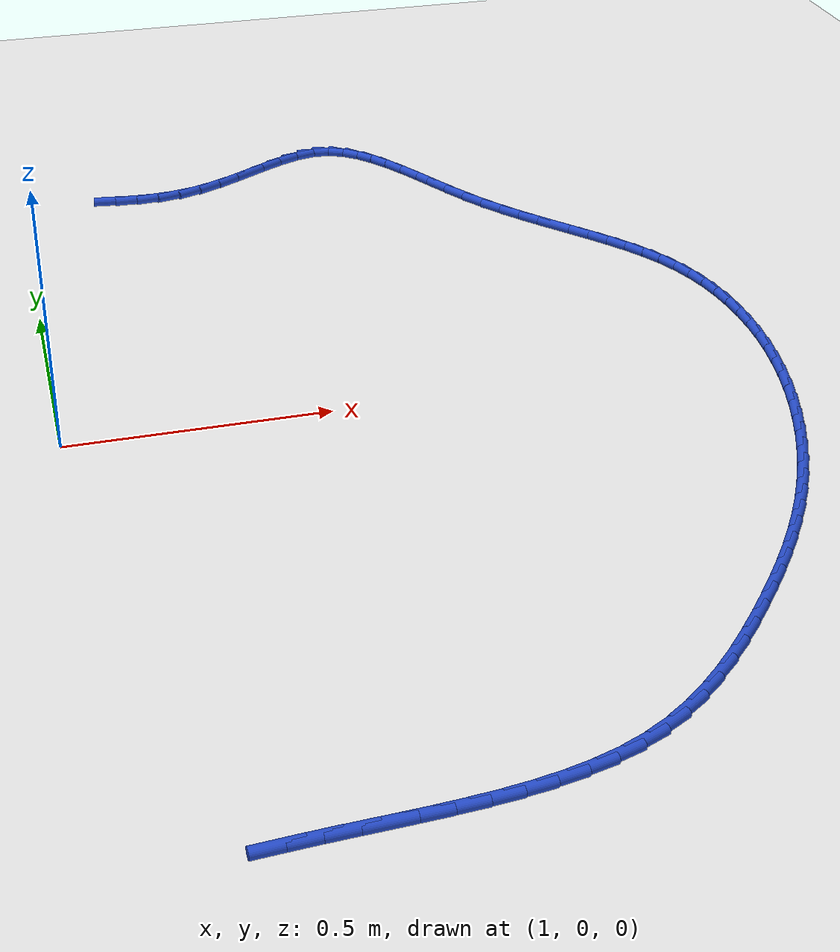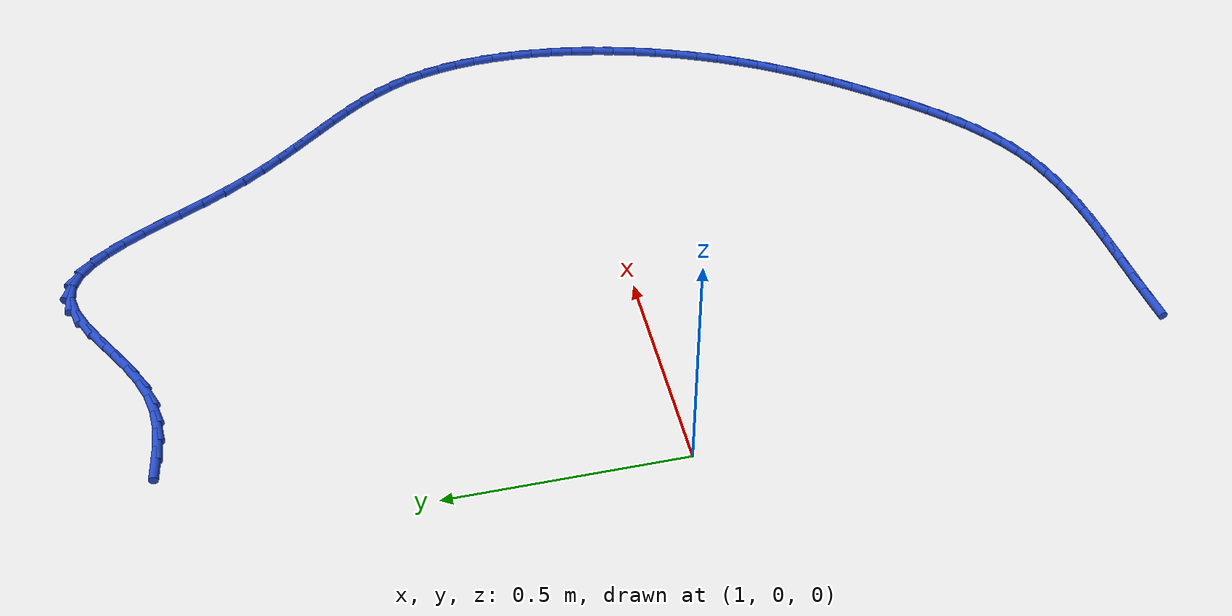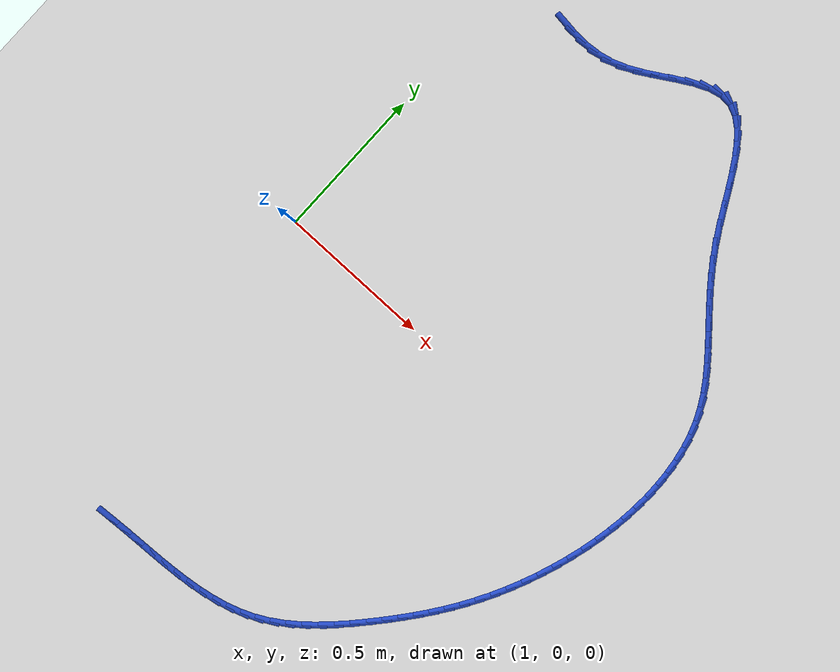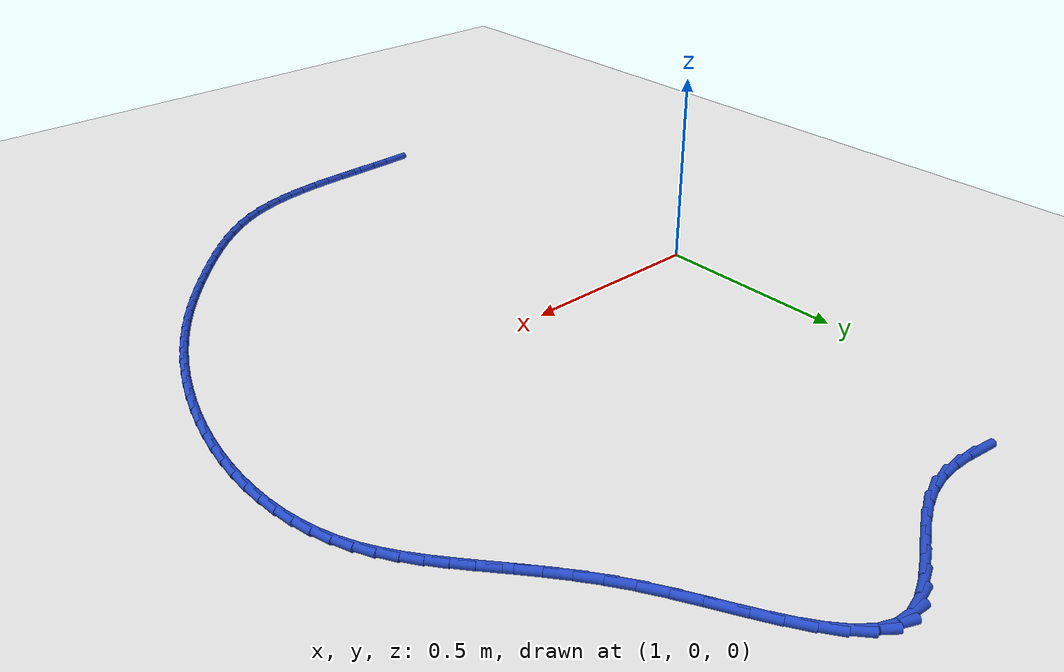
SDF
<sdf version="1.6">
 <world name="default">
  <model name="ground_plane">
   <static>1</static>
   <link name="link">
    <collision name="collision">
     <geometry><plane><normal>0 0 1</normal><size>100 100</size></plane></geometry>
     <surface><friction><ode><mu>100</mu><mu2>50</mu2></ode></friction></surface>
    </collision>
    <visual name="visual">
     <cast_shadows>0</cast_shadows>
     <geometry><plane><normal>0 0 1</normal><size>100 100</size></plane></geometry>
     <material>
      <script><uri>file://media/materials/scripts/gazebo.material</uri><name>Gazebo/WhiteGlow</name></script>
     </material>
    </visual>
   </link>
  </model>
  <model name="line">
   <link name="link_39">
    <pose>1.2042816455728071 1.0242925636586857 0.01 0 1.57 -0.11782451779806392</pose>
    <collision name="collision">
     <geometry><cylinder><radius>0.01</radius><length>0.08</length></cylinder></geometry>
    </collision>
    <visual name="visual">
     <material>
      <script><name>Gazebo/Blue</name><uri>file://media/materials/scripts/gazebo.material</uri></script>
     </material>
     <geometry><cylinder><radius>0.01</radius><length>0.08</length></cylinder></geometry>
    </visual>
   </link>
   <link name="link_40">
    <pose>1.2525978437633607 1.018573239984418 0.01 0 1.57 -0.02336054635019127</pose>
    <collision name="collision">
     <geometry><cylinder><radius>0.01</radius><length>0.08</length></cylinder></geometry>
    </collision>
    <visual name="visual">
     <material>
      <script><name>Gazebo/Blue</name><uri>file://media/materials/scripts/gazebo.material</uri></script>
     </material>
     <geometry><cylinder><radius>0.01</radius><length>0.08</length></cylinder></geometry>
    </visual>
   </link>
   <link name="link_41">
    <pose>1.300659825554377 1.0174502815518742 0.01 0 1.57 0.09508545396640276</pose>
    <collision name="collision">
     <geometry><cylinder><radius>0.01</radius><length>0.08</length></cylinder></geometry>
    </collision>
    <visual name="visual">
     <material>
      <script><name>Gazebo/Blue</name><uri>file://media/materials/scripts/gazebo.material</uri></script>
     </material>
     <geometry><cylinder><radius>0.01</radius><length>0.08</length></cylinder></geometry>
    </visual>
   </link>
   <link name="link_42">
    <pose>1.3486059507132602 1.0220230501137217 0.01 0 1.57 0.2326924779171556</pose>
    <collision name="collision">
     <geometry><cylinder><radius>0.01</radius><length>0.08</length></cylinder></geometry>
    </collision>
    <visual name="visual">
     <material>
      <script><name>Gazebo/Blue</name><uri>file://media/materials/scripts/gazebo.material</uri></script>
     </material>
     <geometry><cylinder><radius>0.01</radius><length>0.08</length></cylinder></geometry>
    </visual>
   </link>
   <link name="link_43">
    <pose>1.3965745790074164 1.033390907422628 0.01 0 1.57 0.3765830726978775</pose>
    <collision name="collision">
     <geometry><cylinder><radius>0.01</radius><length>0.08</length></cylinder></geometry>
    </collision>
    <visual name="visual">
     <material>
      <script><name>Gazebo/Blue</name><uri>file://media/materials/scripts/gazebo.material</uri></script>
     </material>
     <geometry><cylinder><radius>0.01</radius><length>0.08</length></cylinder></geometry>
    </visual>
   </link>
   <link name="link_44">
    <pose>1.4446691625939485 1.0524102026499016 0.01 0 1.57 0.4815172181390112</pose>
    <collision name="collision">
     <geometry><cylinder><radius>0.01</radius><length>0.08</length></cylinder></geometry>
    </collision>
    <visual name="visual">
     <material>
      <script><name>Gazebo/Blue</name><uri>file://media/materials/scripts/gazebo.material</uri></script>
     </material>
     <geometry><cylinder><radius>0.01</radius><length>0.08</length></cylinder></geometry>
    </visual>
   </link>
   <link name="link_45">
    <pose>1.4926397126503907 1.0774767726585655 0.01 0 1.57 0.534894861974571</pose>
    <collision name="collision">
     <geometry><cylinder><radius>0.01</radius><length>0.08</length></cylinder></geometry>
    </collision>
    <visual name="visual">
     <material>
      <script><name>Gazebo/Blue</name><uri>file://media/materials/scripts/gazebo.material</uri></script>
     </material>
     <geometry><cylinder><radius>0.01</radius><length>0.08</length></cylinder></geometry>
    </visual>
   </link>
   <link name="link_46">
    <pose>1.5400308412010468 1.1055565489700203 0.01 0 1.57 0.5440439084154823</pose>
    <collision name="collision">
     <geometry><cylinder><radius>0.01</radius><length>0.08</length></cylinder></geometry>
    </collision>
    <visual name="visual">
     <material>
      <script><name>Gazebo/Blue</name><uri>file://media/materials/scripts/gazebo.material</uri></script>
     </material>
     <geometry><cylinder><radius>0.01</radius><length>0.08</length></cylinder></geometry>
    </visual>
   </link>
   <link name="link_47">
    <pose>1.586384623658411 1.1335978042462127 0.01 0 1.57 0.5076027853361925</pose>
    <collision name="collision">
     <geometry><cylinder><radius>0.01</radius><length>0.08</length></cylinder></geometry>
    </collision>
    <visual name="visual">
     <material>
      <script><name>Gazebo/Blue</name><uri>file://media/materials/scripts/gazebo.material</uri></script>
     </material>
     <geometry><cylinder><radius>0.01</radius><length>0.08</length></cylinder></geometry>
    </visual>
   </link>
   <link name="link_48">
    <pose>1.6312431354349761 1.1585488111490905 0.01 0 1.57 0.41315270728176634</pose>
    <collision name="collision">
     <geometry><cylinder><radius>0.01</radius><length>0.08</length></cylinder></geometry>
    </collision>
    <visual name="visual">
     <material>
      <script><name>Gazebo/Blue</name><uri>file://media/materials/scripts/gazebo.material</uri></script>
     </material>
     <geometry><cylinder><radius>0.01</radius><length>0.08</length></cylinder></geometry>
    </visual>
   </link>
   <link name="link_49">
    <pose>1.674148451943235 1.1773578423406001 0.01 0 1.57 0.23313202911358047</pose>
    <collision name="collision">
     <geometry><cylinder><radius>0.01</radius><length>0.08</length></cylinder></geometry>
    </collision>
    <visual name="visual">
     <material>
      <script><name>Gazebo/Blue</name><uri>file://media/materials/scripts/gazebo.material</uri></script>
     </material>
     <geometry><cylinder><radius>0.01</radius><length>0.08</length></cylinder></geometry>
    </visual>
   </link>
   <link name="link_50">
    <pose>1.7146426485956823 1.1869731704826887 0.01 0 1.57 -0.06676547502860465</pose>
    <collision name="collision">
     <geometry><cylinder><radius>0.01</radius><length>0.08</length></cylinder></geometry>
    </collision>
    <visual name="visual">
     <material>
      <script><name>Gazebo/Blue</name><uri>file://media/materials/scripts/gazebo.material</uri></script>
     </material>
     <geometry><cylinder><radius>0.01</radius><length>0.08</length></cylinder></geometry>
    </visual>
   </link>
   <link name="link_51">
    <pose>1.7522897452074089 1.1844559027336639 0.01 0 1.57 -0.41085451281752644</pose>
    <collision name="collision">
     <geometry><cylinder><radius>0.01</radius><length>0.08</length></cylinder></geometry>
    </collision>
    <visual name="visual">
     <material>
      <script><name>Gazebo/Blue</name><uri>file://media/materials/scripts/gazebo.material</uri></script>
     </material>
     <geometry><cylinder><radius>0.01</radius><length>0.08</length></cylinder></geometry>
    </visual>
   </link>
   <link name="link_52">
    <pose>1.7871231773394185 1.1692808045427932 0.01 0 1.57 -0.6754572141994422</pose>
    <collision name="collision">
     <geometry><cylinder><radius>0.01</radius><length>0.08</length></cylinder></geometry>
    </collision>
    <visual name="visual">
     <material>
      <script><name>Gazebo/Blue</name><uri>file://media/materials/scripts/gazebo.material</uri></script>
     </material>
     <geometry><cylinder><radius>0.01</radius><length>0.08</length></cylinder></geometry>
    </visual>
   </link>
   <link name="link_53">
    <pose>1.8196269815825128 1.1432395574853076 0.01 0 1.57 -0.8514501343276414</pose>
    <collision name="collision">
     <geometry><cylinder><radius>0.01</radius><length>0.08</length></cylinder></geometry>
    </collision>
    <visual name="visual">
     <material>
      <script><name>Gazebo/Blue</name><uri>file://media/materials/scripts/gazebo.material</uri></script>
     </material>
     <geometry><cylinder><radius>0.01</radius><length>0.08</length></cylinder></geometry>
    </visual>
   </link>
   <link name="link_54">
    <pose>1.850303374012861 1.1082173190497888 0.01 0 1.57 -0.9621681207622425</pose>
    <collision name="collision">
     <geometry><cylinder><radius>0.01</radius><length>0.08</length></cylinder></geometry>
    </collision>
    <visual name="visual">
     <material>
      <script><name>Gazebo/Blue</name><uri>file://media/materials/scripts/gazebo.material</uri></script>
     </material>
     <geometry><cylinder><radius>0.01</radius><length>0.08</length></cylinder></geometry>
    </visual>
   </link>
   <link name="link_55">
    <pose>1.8796545707066348 1.0660992467248203 0.01 0 1.57 -1.0283446093188084</pose>
    <collision name="collision">
     <geometry><cylinder><radius>0.01</radius><length>0.08</length></cylinder></geometry>
    </collision>
    <visual name="visual">
     <material>
      <script><name>Gazebo/Blue</name><uri>file://media/materials/scripts/gazebo.material</uri></script>
     </material>
     <geometry><cylinder><radius>0.01</radius><length>0.08</length></cylinder></geometry>
    </visual>
   </link>
   <link name="link_56">
    <pose>1.9081827877400053 1.0187704979989847 0.01 0 1.57 -1.0626998042609304</pose>
    <collision name="collision">
     <geometry><cylinder><radius>0.01</radius><length>0.08</length></cylinder></geometry>
    </collision>
    <visual name="visual">
     <material>
      <script><name>Gazebo/Blue</name><uri>file://media/materials/scripts/gazebo.material</uri></script>
     </material>
     <geometry><cylinder><radius>0.01</radius><length>0.08</length></cylinder></geometry>
    </visual>
   </link>
   <link name="link_57">
    <pose>1.936390241189143 0.968116230360864 0.01 0 1.57 -1.0718394611843682</pose>
    <collision name="collision">
     <geometry><cylinder><radius>0.01</radius><length>0.08</length></cylinder></geometry>
    </collision>
    <visual name="visual">
     <material>
      <script><name>Gazebo/Blue</name><uri>file://media/materials/scripts/gazebo.material</uri></script>
     </material>
     <geometry><cylinder><radius>0.01</radius><length>0.08</length></cylinder></geometry>
    </visual>
   </link>
   <link name="link_58">
    <pose>1.9647791471302196 0.9160216012990413 0.01 0 1.57 -1.058119476177989</pose>
    <collision name="collision">
     <geometry><cylinder><radius>0.01</radius><length>0.08</length></cylinder></geometry>
    </collision>
    <visual name="visual">
     <material>
      <script><name>Gazebo/Blue</name><uri>file://media/materials/scripts/gazebo.material</uri></script>
     </material>
     <geometry><cylinder><radius>0.01</radius><length>0.08</length></cylinder></geometry>
    </visual>
   </link>
   <link name="link_59">
    <pose>1.993851721639406 0.8643717683020999 0.01 0 1.57 -1.0206494215341262</pose>
    <collision name="collision">
     <geometry><cylinder><radius>0.01</radius><length>0.08</length></cylinder></geometry>
    </collision>
    <visual name="visual">
     <material>
      <script><name>Gazebo/Blue</name><uri>file://media/materials/scripts/gazebo.material</uri></script>
     </material>
     <geometry><cylinder><radius>0.01</radius><length>0.08</length></cylinder></geometry>
    </visual>
   </link>
   <link name="link_60">
    <pose>2.0241061232113076 0.8150418504887914 0.01 0 1.57 -0.9686179806672512</pose>
    <collision name="collision">
     <geometry><cylinder><radius>0.01</radius><length>0.08</length></cylinder></geometry>
    </collision>
    <visual name="visual">
     <material>
      <script><name>Gazebo/Blue</name><uri>file://media/materials/scripts/gazebo.material</uri></script>
     </material>
     <geometry><cylinder><radius>0.01</radius><length>0.08</length></cylinder></geometry>
    </visual>
   </link>
   <link name="link_61">
    <pose>2.0557030129762452 0.7690720057317476 0.01 0 1.57 -0.9235868822994103</pose>
    <collision name="collision">
     <geometry><cylinder><radius>0.01</radius><length>0.08</length></cylinder></geometry>
    </collision>
    <visual name="visual">
     <material>
      <script><name>Gazebo/Blue</name><uri>file://media/materials/scripts/gazebo.material</uri></script>
     </material>
     <geometry><cylinder><radius>0.01</radius><length>0.08</length></cylinder></geometry>
    </visual>
   </link>
   <link name="link_62">
    <pose>2.0882172079015975 0.7260530260000932 0.01 0 1.57 -0.8893350564374755</pose>
    <collision name="collision">
     <geometry><cylinder><radius>0.01</radius><length>0.08</length></cylinder></geometry>
    </collision>
    <visual name="visual">
     <material>
      <script><name>Gazebo/Blue</name><uri>file://media/materials/scripts/gazebo.material</uri></script>
     </material>
     <geometry><cylinder><radius>0.01</radius><length>0.08</length></cylinder></geometry>
    </visual>
   </link>
   <link name="link_63">
    <pose>2.121165011489231 0.6854309422033175 0.01 0 1.57 -0.8672696808095234</pose>
    <collision name="collision">
     <geometry><cylinder><radius>0.01</radius><length>0.08</length></cylinder></geometry>
    </collision>
    <visual name="visual">
     <material>
      <script><name>Gazebo/Blue</name><uri>file://media/materials/scripts/gazebo.material</uri></script>
     </material>
     <geometry><cylinder><radius>0.01</radius><length>0.08</length></cylinder></geometry>
    </visual>
   </link>
   <link name="link_64">
    <pose>2.154062727241013 0.6466517852509075 0.01 0 1.57 -0.8586521716212228</pose>
    <collision name="collision">
     <geometry><cylinder><radius>0.01</radius><length>0.08</length></cylinder></geometry>
    </collision>
    <visual name="visual">
     <material>
      <script><name>Gazebo/Blue</name><uri>file://media/materials/scripts/gazebo.material</uri></script>
     </material>
     <geometry><cylinder><radius>0.01</radius><length>0.08</length></cylinder></geometry>
    </visual>
   </link>
   <link name="link_65">
    <pose>2.18642665865881 0.6091615860523518 0.01 0 1.57 -0.8646536499138596</pose>
    <collision name="collision">
     <geometry><cylinder><radius>0.01</radius><length>0.08</length></cylinder></geometry>
    </collision>
    <visual name="visual">
     <material>
      <script><name>Gazebo/Blue</name><uri>file://media/materials/scripts/gazebo.material</uri></script>
     </material>
     <geometry><cylinder><radius>0.01</radius><length>0.08</length></cylinder></geometry>
    </visual>
   </link>
   <link name="link_66">
    <pose>2.217773109244491 0.5724063755171388 0.01 0 1.57 -0.8863631071750743</pose>
    <collision name="collision">
     <geometry><cylinder><radius>0.01</radius><length>0.08</length></cylinder></geometry>
    </collision>
    <visual name="visual">
     <material>
      <script><name>Gazebo/Blue</name><uri>file://media/materials/scripts/gazebo.material</uri></script>
     </material>
     <geometry><cylinder><radius>0.01</radius><length>0.08</length></cylinder></geometry>
    </visual>
   </link>
   <link name="link_67">
    <pose>2.2476183824999216 0.5358321845547559 0.01 0 1.57 -0.9247012103780249</pose>
    <collision name="collision">
     <geometry><cylinder><radius>0.01</radius><length>0.08</length></cylinder></geometry>
    </collision>
    <visual name="visual">
     <material>
      <script><name>Gazebo/Blue</name><uri>file://media/materials/scripts/gazebo.material</uri></script>
     </material>
     <geometry><cylinder><radius>0.01</radius><length>0.08</length></cylinder></geometry>
    </visual>
   </link>
   <link name="link_68">
    <pose>2.2754787819269695 0.4988850440746924 0.01 0 1.57 -0.9801942524848771</pose>
    <collision name="collision">
     <geometry><cylinder><radius>0.01</radius><length>0.08</length></cylinder></geometry>
    </collision>
    <visual name="visual">
     <material>
      <script><name>Gazebo/Blue</name><uri>file://media/materials/scripts/gazebo.material</uri></script>
     </material>
     <geometry><cylinder><radius>0.01</radius><length>0.08</length></cylinder></geometry>
    </visual>
   </link>
   <link name="link_69">
    <pose>2.3008706110275017 0.4610109849864359 0.01 0 1.57 -1.0525889060531999</pose>
    <collision name="collision">
     <geometry><cylinder><radius>0.01</radius><length>0.08</length></cylinder></geometry>
    </collision>
    <visual name="visual">
     <material>
      <script><name>Gazebo/Blue</name><uri>file://media/materials/scripts/gazebo.material</uri></script>
     </material>
     <geometry><cylinder><radius>0.01</radius><length>0.08</length></cylinder></geometry>
    </visual>
   </link>
   <link name="link_70">
    <pose>2.323310173303385 0.4216560381994746 0.01 0 1.57 -1.13982109331925</pose>
    <collision name="collision">
     <geometry><cylinder><radius>0.01</radius><length>0.08</length></cylinder></geometry>
    </collision>
    <visual name="visual">
     <material>
      <script><name>Gazebo/Blue</name><uri>file://media/materials/scripts/gazebo.material</uri></script>
     </material>
     <geometry><cylinder><radius>0.01</radius><length>0.08</length></cylinder></geometry>
    </visual>
   </link>
   <link name="link_71">
    <pose>2.3423310894931917 0.3802884061911581 0.01 0 1.57 -1.2295295904677952</pose>
    <collision name="collision">
     <geometry><cylinder><radius>0.01</radius><length>0.08</length></cylinder></geometry>
    </collision>
    <visual name="visual">
     <material>
      <script><name>Gazebo/Blue</name><uri>file://media/materials/scripts/gazebo.material</uri></script>
     </material>
     <geometry><cylinder><radius>0.01</radius><length>0.08</length></cylinder></geometry>
    </visual>
   </link>
   <link name="link_72">
    <pose>2.3577832313403824 0.3367811932563661 0.01 0 1.57 -1.3122969676908305</pose>
    <collision name="collision">
     <geometry><cylinder><radius>0.01</radius><length>0.08</length></cylinder></geometry>
    </collision>
    <visual name="visual">
     <material>
      <script><name>Gazebo/Blue</name><uri>file://media/materials/scripts/gazebo.material</uri></script>
     </material>
     <geometry><cylinder><radius>0.01</radius><length>0.08</length></cylinder></geometry>
    </visual>
   </link>
   <link name="link_73">
    <pose>2.3697929119557437 0.29136143651655894 0.01 0 1.57 -1.3880580985653634</pose>
    <collision name="collision">
     <geometry><cylinder><radius>0.01</radius><length>0.08</length></cylinder></geometry>
    </collision>
    <visual name="visual">
     <material>
      <script><name>Gazebo/Blue</name><uri>file://media/materials/scripts/gazebo.material</uri></script>
     </material>
     <geometry><cylinder><radius>0.01</radius><length>0.08</length></cylinder></geometry>
    </visual>
   </link>
   <link name="link_74">
    <pose>2.378495754555498 0.24426809298769364 0.01 0 1.57 -1.4572977745761642</pose>
    <collision name="collision">
     <geometry><cylinder><radius>0.01</radius><length>0.08</length></cylinder></geometry>
    </collision>
    <visual name="visual">
     <material>
      <script><name>Gazebo/Blue</name><uri>file://media/materials/scripts/gazebo.material</uri></script>
     </material>
     <geometry><cylinder><radius>0.01</radius><length>0.08</length></cylinder></geometry>
    </visual>
   </link>
   <link name="link_75">
    <pose>2.3840273823558675 0.1957401196857268 0.01 0 1.57 -1.52064025362172</pose>
    <collision name="collision">
     <geometry><cylinder><radius>0.01</radius><length>0.08</length></cylinder></geometry>
    </collision>
    <visual name="visual">
     <material>
      <script><name>Gazebo/Blue</name><uri>file://media/materials/scripts/gazebo.material</uri></script>
     </material>
     <geometry><cylinder><radius>0.01</radius><length>0.08</length></cylinder></geometry>
    </visual>
   </link>
   <link name="link_76">
    <pose>2.3865234185730744 0.1460164736266149 0.01 0 1.57 1.5628263048260254</pose>
    <collision name="collision">
     <geometry><cylinder><radius>0.01</radius><length>0.08</length></cylinder></geometry>
    </collision>
    <visual name="visual">
     <material>
      <script><name>Gazebo/Blue</name><uri>file://media/materials/scripts/gazebo.material</uri></script>
     </material>
     <geometry><cylinder><radius>0.01</radius><length>0.08</length></cylinder></geometry>
    </visual>
   </link>
   <link name="link_77">
    <pose>2.386119486423341 0.09533611182631498 0.01 0 1.57 1.5092323331376005</pose>
    <collision name="collision">
     <geometry><cylinder><radius>0.01</radius><length>0.08</length></cylinder></geometry>
    </collision>
    <visual name="visual">
     <material>
      <script><name>Gazebo/Blue</name><uri>file://media/materials/scripts/gazebo.material</uri></script>
     </material>
     <geometry><cylinder><radius>0.01</radius><length>0.08</length></cylinder></geometry>
    </visual>
   </link>
   <link name="link_78">
    <pose>2.38295120912289 0.04393799130078455 0.01 0 1.57 1.4595127516049173</pose>
    <collision name="collision">
     <geometry><cylinder><radius>0.01</radius><length>0.08</length></cylinder></geometry>
    </collision>
    <visual name="visual">
     <material>
      <script><name>Gazebo/Blue</name><uri>file://media/materials/scripts/gazebo.material</uri></script>
     </material>
     <geometry><cylinder><radius>0.01</radius><length>0.08</length></cylinder></geometry>
    </visual>
   </link>
   <link name="link_79">
    <pose>2.377154209887942 -0.007938930934021149 0.01 0 1.57 1.4130501560871613</pose>
    <collision name="collision">
     <geometry><cylinder><radius>0.01</radius><length>0.08</length></cylinder></geometry>
    </collision>
    <visual name="visual">
     <material>
      <script><name>Gazebo/Blue</name><uri>file://media/materials/scripts/gazebo.material</uri></script>
     </material>
     <geometry><cylinder><radius>0.01</radius><length>0.08</length></cylinder></geometry>
    </visual>
   </link>
   <link name="link_80">
    <pose>2.368864111934722 -0.060055697862143785 0.01 0 1.57 1.369270758628455</pose>
    <collision name="collision">
     <geometry><cylinder><radius>0.01</radius><length>0.08</length></cylinder></geometry>
    </collision>
    <visual name="visual">
     <material>
      <script><name>Gazebo/Blue</name><uri>file://media/materials/scripts/gazebo.material</uri></script>
     </material>
     <geometry><cylinder><radius>0.01</radius><length>0.08</length></cylinder></geometry>
    </visual>
   </link>
   <link name="link_81">
    <pose>2.35821653847945 -0.11217335246762836 0.01 0 1.57 1.3276411852856618</pose>
    <collision name="collision">
     <geometry><cylinder><radius>0.01</radius><length>0.08</length></cylinder></geometry>
    </collision>
    <visual name="visual">
     <material>
      <script><name>Gazebo/Blue</name><uri>file://media/materials/scripts/gazebo.material</uri></script>
     </material>
     <geometry><cylinder><radius>0.01</radius><length>0.08</length></cylinder></geometry>
    </visual>
   </link>
   <link name="link_82">
    <pose>2.3453471127383496 -0.16405293773451715 0.01 0 1.57 1.2876613845788</pose>
    <collision name="collision">
     <geometry><cylinder><radius>0.01</radius><length>0.08</length></cylinder></geometry>
    </collision>
    <visual name="visual">
     <material>
      <script><name>Gazebo/Blue</name><uri>file://media/materials/scripts/gazebo.material</uri></script>
     </material>
     <geometry><cylinder><radius>0.01</radius><length>0.08</length></cylinder></geometry>
    </visual>
   </link>
   <link name="link_83">
    <pose>2.330391457927643 -0.2154554966468527 0.01 0 1.57 1.2488551633261287</pose>
    <collision name="collision">
     <geometry><cylinder><radius>0.01</radius><length>0.08</length></cylinder></geometry>
    </collision>
    <visual name="visual">
     <material>
      <script><name>Gazebo/Blue</name><uri>file://media/materials/scripts/gazebo.material</uri></script>
     </material>
     <geometry><cylinder><radius>0.01</radius><length>0.08</length></cylinder></geometry>
    </visual>
   </link>
   <link name="link_84">
    <pose>2.3134851972635513 -0.2661420721886798 0.01 0 1.57 1.2107590940924304</pose>
    <collision name="collision">
     <geometry><cylinder><radius>0.01</radius><length>0.08</length></cylinder></geometry>
    </collision>
    <visual name="visual">
     <material>
      <script><name>Gazebo/Blue</name><uri>file://media/materials/scripts/gazebo.material</uri></script>
     </material>
     <geometry><cylinder><radius>0.01</radius><length>0.08</length></cylinder></geometry>
    </visual>
   </link>
   <link name="link_85">
    <pose>2.294763953962299 -0.3158737073440403 0.01 0 1.57 1.1729099934525988</pose>
    <collision name="collision">
     <geometry><cylinder><radius>0.01</radius><length>0.08</length></cylinder></geometry>
    </collision>
    <visual name="visual">
     <material>
      <script><name>Gazebo/Blue</name><uri>file://media/materials/scripts/gazebo.material</uri></script>
     </material>
     <geometry><cylinder><radius>0.01</radius><length>0.08</length></cylinder></geometry>
    </visual>
   </link>
   <link name="link_86">
    <pose>2.274363351240106 -0.36441144509697876 0.01 0 1.57 1.1348307691559723</pose>
    <collision name="collision">
     <geometry><cylinder><radius>0.01</radius><length>0.08</length></cylinder></geometry>
    </collision>
    <visual name="visual">
     <material>
      <script><name>Gazebo/Blue</name><uri>file://media/materials/scripts/gazebo.material</uri></script>
     </material>
     <geometry><cylinder><radius>0.01</radius><length>0.08</length></cylinder></geometry>
    </visual>
   </link>
   <link name="link_87">
    <pose>2.2524190123131955 -0.41151632843153774 0.01 0 1.57 1.096062313885386</pose>
    <collision name="collision">
     <geometry><cylinder><radius>0.01</radius><length>0.08</length></cylinder></geometry>
    </collision>
    <visual name="visual">
     <material>
      <script><name>Gazebo/Blue</name><uri>file://media/materials/scripts/gazebo.material</uri></script>
     </material>
     <geometry><cylinder><radius>0.01</radius><length>0.08</length></cylinder></geometry>
    </visual>
   </link>
   <link name="link_88">
    <pose>2.229064409681126 -0.45695897223915677 0.01 0 1.57 1.0573435636895376</pose>
    <collision name="collision">
     <geometry><cylinder><radius>0.01</radius><length>0.08</length></cylinder></geometry>
    </collision>
    <visual name="visual">
     <material>
      <script><name>Gazebo/Blue</name><uri>file://media/materials/scripts/gazebo.material</uri></script>
     </material>
     <geometry><cylinder><radius>0.01</radius><length>0.08</length></cylinder></geometry>
    </visual>
   </link>
   <link name="link_89">
    <pose>2.2043846949025516 -0.5007250469688461 0.01 0 1.57 1.0200967625125452</pose>
    <collision name="collision">
     <geometry><cylinder><radius>0.01</radius><length>0.08</length></cylinder></geometry>
    </collision>
    <visual name="visual">
     <material>
      <script><name>Gazebo/Blue</name><uri>file://media/materials/scripts/gazebo.material</uri></script>
     </material>
     <geometry><cylinder><radius>0.01</radius><length>0.08</length></cylinder></geometry>
    </visual>
   </link>
   <link name="link_90">
    <pose>2.1784173265674456 -0.5430124837951162 0.01 0 1.57 0.9848937162894433</pose>
    <collision name="collision">
     <geometry><cylinder><radius>0.01</radius><length>0.08</length></cylinder></geometry>
    </collision>
    <visual name="visual">
     <material>
      <script><name>Gazebo/Blue</name><uri>file://media/materials/scripts/gazebo.material</uri></script>
     </material>
     <geometry><cylinder><radius>0.01</radius><length>0.08</length></cylinder></geometry>
    </visual>
   </link>
   <link name="link_91">
    <pose>2.1511977381502954 -0.5840282268034769 0.01 0 1.57 0.9522070496805922</pose>
    <collision name="collision">
     <geometry><cylinder><radius>0.01</radius><length>0.08</length></cylinder></geometry>
    </collision>
    <visual name="visual">
     <material>
      <script><name>Gazebo/Blue</name><uri>file://media/materials/scripts/gazebo.material</uri></script>
     </material>
     <geometry><cylinder><radius>0.01</radius><length>0.08</length></cylinder></geometry>
    </visual>
   </link>
   <link name="link_92">
    <pose>2.1227613631255884 -0.6239792200794408 0.01 0 1.57 0.9224370843324163</pose>
    <collision name="collision">
     <geometry><cylinder><radius>0.01</radius><length>0.08</length></cylinder></geometry>
    </collision>
    <visual name="visual">
     <material>
      <script><name>Gazebo/Blue</name><uri>file://media/materials/scripts/gazebo.material</uri></script>
     </material>
     <geometry><cylinder><radius>0.01</radius><length>0.08</length></cylinder></geometry>
    </visual>
   </link>
   <link name="link_93">
    <pose>2.093143634967811 -0.663072407708517 0.01 0 1.57 0.8959001671479456</pose>
    <collision name="collision">
     <geometry><cylinder><radius>0.01</radius><length>0.08</length></cylinder></geometry>
    </collision>
    <visual name="visual">
     <material>
      <script><name>Gazebo/Blue</name><uri>file://media/materials/scripts/gazebo.material</uri></script>
     </material>
     <geometry><cylinder><radius>0.01</radius><length>0.08</length></cylinder></geometry>
    </visual>
   </link>
   <link name="link_94">
    <pose>2.0623799871514517 -0.7015147337762178 0.01 0 1.57 0.8728239710631356</pose>
    <collision name="collision">
     <geometry><cylinder><radius>0.01</radius><length>0.08</length></cylinder></geometry>
    </collision>
    <visual name="visual">
     <material>
      <script><name>Gazebo/Blue</name><uri>file://media/materials/scripts/gazebo.material</uri></script>
     </material>
     <geometry><cylinder><radius>0.01</radius><length>0.08</length></cylinder></geometry>
    </visual>
   </link>
   <link name="link_95">
    <pose>2.0305058531509967 -0.7395131423680534 0.01 0 1.57 0.8530415798553839</pose>
    <collision name="collision">
     <geometry><cylinder><radius>0.01</radius><length>0.08</length></cylinder></geometry>
    </collision>
    <visual name="visual">
     <material>
      <script><name>Gazebo/Blue</name><uri>file://media/materials/scripts/gazebo.material</uri></script>
     </material>
     <geometry><cylinder><radius>0.01</radius><length>0.08</length></cylinder></geometry>
    </visual>
   </link>
   <link name="link_96">
    <pose>1.9975533420515486 -0.7772549667868188 0.01 0 1.57 0.83038110487879</pose>
    <collision name="collision">
     <geometry><cylinder><radius>0.01</radius><length>0.08</length></cylinder></geometry>
    </collision>
    <visual name="visual">
     <material>
      <script><name>Gazebo/Blue</name><uri>file://media/materials/scripts/gazebo.material</uri></script>
     </material>
     <geometry><cylinder><radius>0.01</radius><length>0.08</length></cylinder></geometry>
    </visual>
   </link>
   <link name="link_97">
    <pose>1.963487537830247 -0.8145321549949883 0.01 0 1.57 0.7988435093050638</pose>
    <collision name="collision">
     <geometry><cylinder><radius>0.01</radius><length>0.08</length></cylinder></geometry>
    </collision>
    <visual name="visual">
     <material>
      <script><name>Gazebo/Blue</name><uri>file://media/materials/scripts/gazebo.material</uri></script>
     </material>
     <geometry><cylinder><radius>0.01</radius><length>0.08</length></cylinder></geometry>
    </visual>
   </link>
   <link name="link_98">
    <pose>1.928211356768369 -0.8507699237950992 0.01 0 1.57 0.757646637489345</pose>
    <collision name="collision">
     <geometry><cylinder><radius>0.01</radius><length>0.08</length></cylinder></geometry>
    </collision>
    <visual name="visual">
     <material>
      <script><name>Gazebo/Blue</name><uri>file://media/materials/scripts/gazebo.material</uri></script>
     </material>
     <geometry><cylinder><radius>0.01</radius><length>0.08</length></cylinder></geometry>
    </visual>
   </link>
   <link name="link_99">
    <pose>1.891625363964191 -0.8853796202128688 0.01 0 1.57 0.7059745853424321</pose>
    <collision name="collision">
     <geometry><cylinder><radius>0.01</radius><length>0.08</length></cylinder></geometry>
    </collision>
    <visual name="visual">
     <material>
      <script><name>Gazebo/Blue</name><uri>file://media/materials/scripts/gazebo.material</uri></script>
     </material>
     <geometry><cylinder><radius>0.01</radius><length>0.08</length></cylinder></geometry>
    </visual>
   </link>
   <link name="link_100">
    <pose>1.8536301245159947 -0.9177725912740133 0.01 0 1.57 0.6428471131550851</pose>
    <collision name="collision">
     <geometry><cylinder><radius>0.01</radius><length>0.08</length></cylinder></geometry>
    </collision>
    <visual name="visual">
     <material>
      <script><name>Gazebo/Blue</name><uri>file://media/materials/scripts/gazebo.material</uri></script>
     </material>
     <geometry><cylinder><radius>0.01</radius><length>0.08</length></cylinder></geometry>
    </visual>
   </link>
   <link name="link_101">
    <pose>1.8141262035220587 -0.9473601840042484 0.01 0 1.57 0.5672718865307994</pose>
    <collision name="collision">
     <geometry><cylinder><radius>0.01</radius><length>0.08</length></cylinder></geometry>
    </collision>
    <visual name="visual">
     <material>
      <script><name>Gazebo/Blue</name><uri>file://media/materials/scripts/gazebo.material</uri></script>
     </material>
     <geometry><cylinder><radius>0.01</radius><length>0.08</length></cylinder></geometry>
    </visual>
   </link>
   <link name="link_102">
    <pose>1.7730141660806615 -0.9735537454292917 0.01 0 1.57 0.478535032240379</pose>
    <collision name="collision">
     <geometry><cylinder><radius>0.01</radius><length>0.08</length></cylinder></geometry>
    </collision>
    <visual name="visual">
     <material>
      <script><name>Gazebo/Blue</name><uri>file://media/materials/scripts/gazebo.material</uri></script>
     </material>
     <geometry><cylinder><radius>0.01</radius><length>0.08</length></cylinder></geometry>
    </visual>
   </link>
   <link name="link_103">
    <pose>1.7301950101969013 -0.9957661926345591 0.01 0 1.57 0.38328983788159293</pose>
    <collision name="collision">
     <geometry><cylinder><radius>0.01</radius><length>0.08</length></cylinder></geometry>
    </collision>
    <visual name="visual">
     <material>
      <script><name>Gazebo/Blue</name><uri>file://media/materials/scripts/gazebo.material</uri></script>
     </material>
     <geometry><cylinder><radius>0.01</radius><length>0.08</length></cylinder></geometry>
    </visual>
   </link>
   <link name="link_104">
    <pose>1.6856566089899627 -1.0137255200149022 0.01 0 1.57 0.2975214215037489</pose>
    <collision name="collision">
     <geometry><cylinder><radius>0.01</radius><length>0.08</length></cylinder></geometry>
    </collision>
    <visual name="visual">
     <material>
      <script><name>Gazebo/Blue</name><uri>file://media/materials/scripts/gazebo.material</uri></script>
     </material>
     <geometry><cylinder><radius>0.01</radius><length>0.08</length></cylinder></geometry>
    </visual>
   </link>
   <link name="link_105">
    <pose>1.6395783120928236 -1.0278541660004004 0.01 0 1.57 0.22422469611445223</pose>
    <collision name="collision">
     <geometry><cylinder><radius>0.01</radius><length>0.08</length></cylinder></geometry>
    </collision>
    <visual name="visual">
     <material>
      <script><name>Gazebo/Blue</name><uri>file://media/materials/scripts/gazebo.material</uri></script>
     </material>
     <geometry><cylinder><radius>0.01</radius><length>0.08</length></cylinder></geometry>
    </visual>
   </link>
   <link name="link_106">
    <pose>1.592165016321856 -1.0386672231475893 0.01 0 1.57 0.16358477978292887</pose>
    <collision name="collision">
     <geometry><cylinder><radius>0.01</radius><length>0.08</length></cylinder></geometry>
    </collision>
    <visual name="visual">
     <material>
      <script><name>Gazebo/Blue</name><uri>file://media/materials/scripts/gazebo.material</uri></script>
     </material>
     <geometry><cylinder><radius>0.01</radius><length>0.08</length></cylinder></geometry>
    </visual>
   </link>
   <link name="link_107">
    <pose>1.5436216184934282 -1.0466797840130073 0.01 0 1.57 0.11526043984054417</pose>
    <collision name="collision">
     <geometry><cylinder><radius>0.01</radius><length>0.08</length></cylinder></geometry>
    </collision>
    <visual name="visual">
     <material>
      <script><name>Gazebo/Blue</name><uri>file://media/materials/scripts/gazebo.material</uri></script>
     </material>
     <geometry><cylinder><radius>0.01</radius><length>0.08</length></cylinder></geometry>
    </visual>
   </link>
   <link name="link_108">
    <pose>1.4941530154239118 -1.0524069411531896 0.01 0 1.57 0.0786763099876842</pose>
    <collision name="collision">
     <geometry><cylinder><radius>0.01</radius><length>0.08</length></cylinder></geometry>
    </collision>
    <visual name="visual">
     <material>
      <script><name>Gazebo/Blue</name><uri>file://media/materials/scripts/gazebo.material</uri></script>
     </material>
     <geometry><cylinder><radius>0.01</radius><length>0.08</length></cylinder></geometry>
    </visual>
   </link>
   <link name="link_109">
    <pose>1.443964103929679 -1.0563637871246736 0.01 0 1.57 0.05323165613091327</pose>
    <collision name="collision">
     <geometry><cylinder><radius>0.01</radius><length>0.08</length></cylinder></geometry>
    </collision>
    <visual name="visual">
     <material>
      <script><name>Gazebo/Blue</name><uri>file://media/materials/scripts/gazebo.material</uri></script>
     </material>
     <geometry><cylinder><radius>0.01</radius><length>0.08</length></cylinder></geometry>
    </visual>
   </link>
   <link name="link_110">
    <pose>1.3932597808270972 -1.059065414483995 0.01 0 1.57 0.03843069253126035</pose>
    <collision name="collision">
     <geometry><cylinder><radius>0.01</radius><length>0.08</length></cylinder></geometry>
    </collision>
    <visual name="visual">
     <material>
      <script><name>Gazebo/Blue</name><uri>file://media/materials/scripts/gazebo.material</uri></script>
     </material>
     <geometry><cylinder><radius>0.01</radius><length>0.08</length></cylinder></geometry>
    </visual>
   </link>
   <link name="link_111">
    <pose>1.3422449429325385 -1.061026915787691 0.01 0 1.57 0.03395510409220163</pose>
    <collision name="collision">
     <geometry><cylinder><radius>0.01</radius><length>0.08</length></cylinder></geometry>
    </collision>
    <visual name="visual">
     <material>
      <script><name>Gazebo/Blue</name><uri>file://media/materials/scripts/gazebo.material</uri></script>
     </material>
     <geometry><cylinder><radius>0.01</radius><length>0.08</length></cylinder></geometry>
    </visual>
   </link>
   <link name="link_112">
    <pose>1.2911244870623737 -1.0627633835922978 0.01 0 1.57 0.039698460282382386</pose>
    <collision name="collision">
     <geometry><cylinder><radius>0.01</radius><length>0.08</length></cylinder></geometry>
    </collision>
    <visual name="visual">
     <material>
      <script><name>Gazebo/Blue</name><uri>file://media/materials/scripts/gazebo.material</uri></script>
     </material>
     <geometry><cylinder><radius>0.01</radius><length>0.08</length></cylinder></geometry>
    </visual>
   </link>
   <link name="link_113">
    <pose>1.240103310032972 -1.064789910454352 0.01 0 1.57 0.05246544620024934</pose>
    <collision name="collision">
     <geometry><cylinder><radius>0.01</radius><length>0.08</length></cylinder></geometry>
    </collision>
    <visual name="visual">
     <material>
      <script><name>Gazebo/Blue</name><uri>file://media/materials/scripts/gazebo.material</uri></script>
     </material>
     <geometry><cylinder><radius>0.01</radius><length>0.08</length></cylinder></geometry>
    </visual>
   </link>
   <link name="link_114">
    <pose>1.189360812319214 -1.0674545836339386 0.01 0 1.57 0.057577758863087504</pose>
    <collision name="collision">
     <geometry><cylinder><radius>0.01</radius><length>0.08</length></cylinder></geometry>
    </collision>
    <visual name="visual">
     <material>
      <script><name>Gazebo/Blue</name><uri>file://media/materials/scripts/gazebo.material</uri></script>
     </material>
     <geometry><cylinder><radius>0.01</radius><length>0.08</length></cylinder></geometry>
    </visual>
   </link>
  </model>
 </world>
</sdf>
